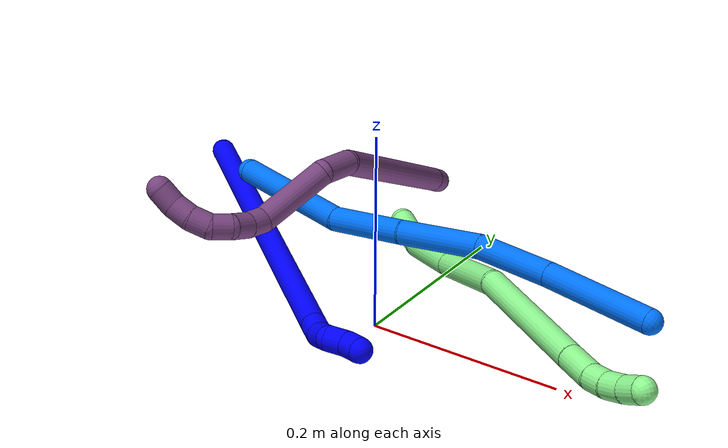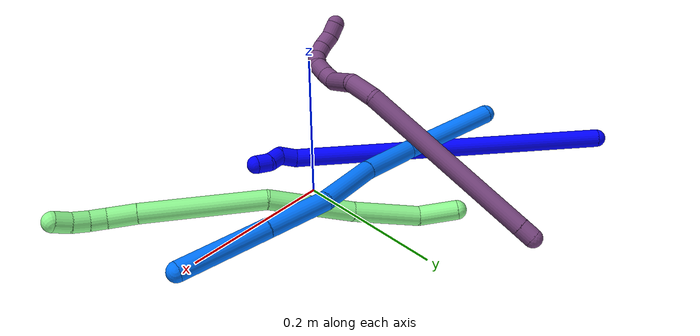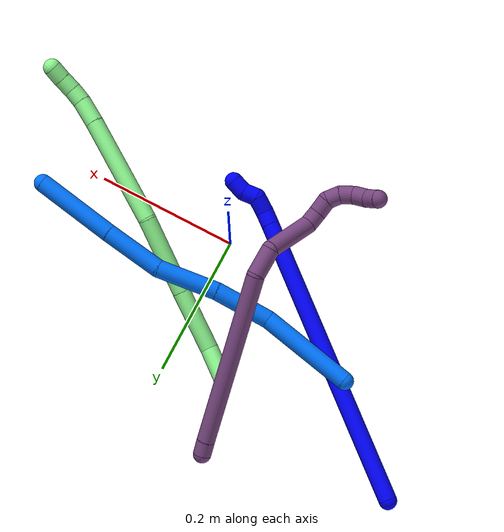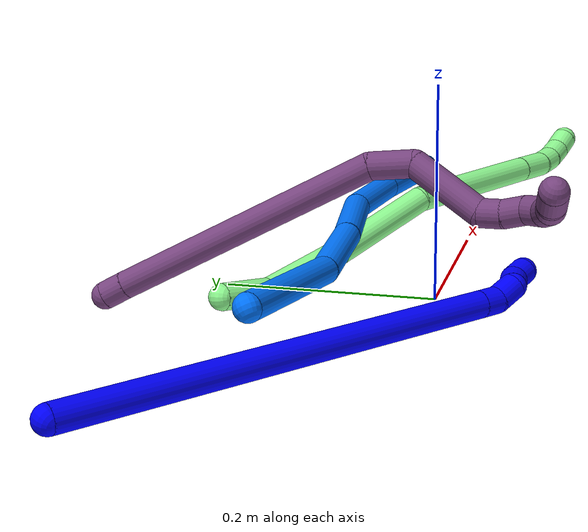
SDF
<sdf version="1.7">
 <world name="default">
  <model name="1">
   <static>0</static>
   <link name="1">
    <collision name="collision-cylinder-e_1_1_4">
     <pose>0.159517 -0.130826 -0.02363 1.74949 0.876014 1.02177</pose>
     <geometry><cylinder><radius>0.0125</radius><length>0.415306</length></cylinder></geometry>
     <surface>
      <friction><ode><mu>1.16</mu><mu2>1.16</mu2><slip1>0</slip1><slip2>0</slip2></ode></friction>
      <contact><ode><kp>1e+06</kp><kd>1</kd><max_vel>0</max_vel><min_depth>0.001</min_depth></ode></contact>
     </surface>
    </collision>
    <visual name="visual-cylinder-e_1_1_4">
     <pose>0.159517 -0.130826 -0.02363 1.74949 0.876014 1.02177</pose>
     <geometry><cylinder><radius>0.0125</radius><length>0.415306</length></cylinder></geometry>
     <material><ambient>0 0 1 1</ambient></material>
    </visual>
    <collision name="collision-cylinder-e_2_4_5">
     <pose>0.326929 -0.268099 -0.048311 1.73226 0.879559 1.01082</pose>
     <geometry><cylinder><radius>0.0125</radius><length>0.020492</length></cylinder></geometry>
     <surface>
      <friction><ode><mu>1.16</mu><mu2>1.16</mu2><slip1>0</slip1><slip2>0</slip2></ode></friction>
      <contact><ode><kp>1e+06</kp><kd>1</kd><max_vel>0</max_vel><min_depth>0.001</min_depth></ode></contact>
     </surface>
    </collision>
    <visual name="visual-cylinder-e_2_4_5">
     <pose>0.326929 -0.268099 -0.048311 1.73226 0.879559 1.01082</pose>
     <geometry><cylinder><radius>0.0125</radius><length>0.020492</length></cylinder></geometry>
     <material><ambient>0 0 1 1</ambient></material>
    </visual>
    <collision name="collision-cylinder-e_3_5_6">
     <pose>0.341251 -0.284482 -0.048433 1.47765 0.572252 0.523687</pose>
     <geometry><cylinder><radius>0.0125</radius><length>0.023741</length></cylinder></geometry>
     <surface>
      <friction><ode><mu>1.16</mu><mu2>1.16</mu2><slip1>0</slip1><slip2>0</slip2></ode></friction>
      <contact><ode><kp>1e+06</kp><kd>1</kd><max_vel>0</max_vel><min_depth>0.001</min_depth></ode></contact>
     </surface>
    </collision>
    <visual name="visual-cylinder-e_3_5_6">
     <pose>0.341251 -0.284482 -0.048433 1.47765 0.572252 0.523687</pose>
     <geometry><cylinder><radius>0.0125</radius><length>0.023741</length></cylinder></geometry>
     <material><ambient>0 0 1 1</ambient></material>
    </visual>
    <collision name="collision-cylinder-e_4_6_7">
     <pose>0.354846 -0.298239 -0.041424 0.561123 0.784369 0.237255</pose>
     <geometry><cylinder><radius>0.0125</radius><length>0.020291</length></cylinder></geometry>
     <surface>
      <friction><ode><mu>1.16</mu><mu2>1.16</mu2><slip1>0</slip1><slip2>0</slip2></ode></friction>
      <contact><ode><kp>1e+06</kp><kd>1</kd><max_vel>0</max_vel><min_depth>0.001</min_depth></ode></contact>
     </surface>
    </collision>
    <visual name="visual-cylinder-e_4_6_7">
     <pose>0.354846 -0.298239 -0.041424 0.561123 0.784369 0.237255</pose>
     <geometry><cylinder><radius>0.0125</radius><length>0.020291</length></cylinder></geometry>
     <material><ambient>0 0 1 1</ambient></material>
    </visual>
    <collision name="collision-cylinder-e_5_7_2">
     <pose>0.369249 -0.308569 -0.032702 1.18511 0.800223 0.554795</pose>
     <geometry><cylinder><radius>0.0125</radius><length>0.020171</length></cylinder></geometry>
     <surface>
      <friction><ode><mu>1.16</mu><mu2>1.16</mu2><slip1>0</slip1><slip2>0</slip2></ode></friction>
      <contact><ode><kp>1e+06</kp><kd>1</kd><max_vel>0</max_vel><min_depth>0.001</min_depth></ode></contact>
     </surface>
    </collision>
    <visual name="visual-cylinder-e_5_7_2">
     <pose>0.369249 -0.308569 -0.032702 1.18511 0.800223 0.554795</pose>
     <geometry><cylinder><radius>0.0125</radius><length>0.020171</length></cylinder></geometry>
     <material><ambient>0 0 1 1</ambient></material>
    </visual>
    <collision name="collision-sphere-2">
     <pose>0.376485 -0.315078 -0.030059 0 -0 0</pose>
     <geometry><sphere><radius>0.0125</radius></sphere></geometry>
     <surface>
      <friction><ode><mu>1.16</mu><mu2>1.16</mu2><slip1>0</slip1><slip2>0</slip2></ode></friction>
      <contact><ode><kp>1e+06</kp><kd>1</kd><max_vel>0</max_vel><min_depth>0.001</min_depth></ode></contact>
     </surface>
    </collision>
    <visual name="visual-sphere-2">
     <pose>0.376485 -0.315078 -0.030059 0 -0 0</pose>
     <geometry><sphere><radius>0.0125</radius></sphere></geometry>
     <material><ambient>0 0 1 1</ambient></material>
    </visual>
    <collision name="collision-sphere-7">
     <pose>0.362012 -0.30206 -0.035344 0 -0 0</pose>
     <geometry><sphere><radius>0.0125</radius></sphere></geometry>
     <surface>
      <friction><ode><mu>1.16</mu><mu2>1.16</mu2><slip1>0</slip1><slip2>0</slip2></ode></friction>
      <contact><ode><kp>1e+06</kp><kd>1</kd><max_vel>0</max_vel><min_depth>0.001</min_depth></ode></contact>
     </surface>
    </collision>
    <visual name="visual-sphere-7">
     <pose>0.362012 -0.30206 -0.035344 0 -0 0</pose>
     <geometry><sphere><radius>0.0125</radius></sphere></geometry>
     <material><ambient>0 0 1 1</ambient></material>
    </visual>
    <collision name="collision-sphere-6">
     <pose>0.347679 -0.294417 -0.047504 0 -0 0</pose>
     <geometry><sphere><radius>0.0125</radius></sphere></geometry>
     <surface>
      <friction><ode><mu>1.16</mu><mu2>1.16</mu2><slip1>0</slip1><slip2>0</slip2></ode></friction>
      <contact><ode><kp>1e+06</kp><kd>1</kd><max_vel>0</max_vel><min_depth>0.001</min_depth></ode></contact>
     </surface>
    </collision>
    <visual name="visual-sphere-6">
     <pose>0.347679 -0.294417 -0.047504 0 -0 0</pose>
     <geometry><sphere><radius>0.0125</radius></sphere></geometry>
     <material><ambient>0 0 1 1</ambient></material>
    </visual>
    <collision name="collision-sphere-5">
     <pose>0.334823 -0.274546 -0.049361 0 -0 0</pose>
     <geometry><sphere><radius>0.0125</radius></sphere></geometry>
     <surface>
      <friction><ode><mu>1.16</mu><mu2>1.16</mu2><slip1>0</slip1><slip2>0</slip2></ode></friction>
      <contact><ode><kp>1e+06</kp><kd>1</kd><max_vel>0</max_vel><min_depth>0.001</min_depth></ode></contact>
     </surface>
    </collision>
    <visual name="visual-sphere-5">
     <pose>0.334823 -0.274546 -0.049361 0 -0 0</pose>
     <geometry><sphere><radius>0.0125</radius></sphere></geometry>
     <material><ambient>0 0 1 1</ambient></material>
    </visual>
    <collision name="collision-sphere-1">
     <geometry><sphere><radius>0.0125</radius></sphere></geometry>
     <surface>
      <friction><ode><mu>1.16</mu><mu2>1.16</mu2><slip1>0</slip1><slip2>0</slip2></ode></friction>
      <contact><ode><kp>1e+06</kp><kd>1</kd><max_vel>0</max_vel><min_depth>0.001</min_depth></ode></contact>
     </surface>
    </collision>
    <visual name="visual-sphere-1">
     <geometry><sphere><radius>0.0125</radius></sphere></geometry>
     <material><ambient>0 0 1 1</ambient></material>
    </visual>
    <collision name="collision-sphere-4">
     <pose>0.319035 -0.261652 -0.047261 0 -0 0</pose>
     <geometry><sphere><radius>0.0125</radius></sphere></geometry>
     <surface>
      <friction><ode><mu>1.16</mu><mu2>1.16</mu2><slip1>0</slip1><slip2>0</slip2></ode></friction>
      <contact><ode><kp>1e+06</kp><kd>1</kd><max_vel>0</max_vel><min_depth>0.001</min_depth></ode></contact>
     </surface>
    </collision>
    <visual name="visual-sphere-4">
     <pose>0.319035 -0.261652 -0.047261 0 -0 0</pose>
     <geometry><sphere><radius>0.0125</radius></sphere></geometry>
     <material><ambient>0 0 1 1</ambient></material>
    </visual>
    <inertial>
     <pose>0.191395 -0.157712 -0.026908 0 -0 0</pose>
     <mass>0.5</mass>
     <inertia>
      <ixx>0.005304</ixx>
      <ixy>0</ixy>
      <ixz>0</ixz>
      <iyy>0.006555</iyy>
      <iyz>0</iyz>
      <izz>-0.00083</izz>
     </inertia>
    </inertial>
   </link>
   <pose>-0.358455 0.217861 0.011495 -1.28395 0.640028 -0.400552</pose>
  </model>
  <model name="13">
   <static>0</static>
   <link name="13">
    <collision name="collision-cylinder-e_1_1_4">
     <pose>0.021274 -0.009643 -0.009671 2.35765 1.00012 1.84625</pose>
     <geometry><cylinder><radius>0.0125</radius><length>0.050561</length></cylinder></geometry>
     <surface>
      <friction><ode><mu>1.16</mu><mu2>1.16</mu2><slip1>0</slip1><slip2>0</slip2></ode></friction>
      <contact><ode><kp>1e+06</kp><kd>1</kd><max_vel>0</max_vel><min_depth>0.001</min_depth></ode></contact>
     </surface>
    </collision>
    <visual name="visual-cylinder-e_1_1_4">
     <pose>0.021274 -0.009643 -0.009671 2.35765 1.00012 1.84625</pose>
     <geometry><cylinder><radius>0.0125</radius><length>0.050561</length></cylinder></geometry>
     <material><ambient>0.564706 0.984314 0.572549 1</ambient></material>
    </visual>
    <collision name="collision-cylinder-e_2_4_5">
     <pose>0.071507 -0.047953 -0.035287 2.07839 0.723199 1.14312</pose>
     <geometry><cylinder><radius>0.0125</radius><length>0.087515</length></cylinder></geometry>
     <surface>
      <friction><ode><mu>1.16</mu><mu2>1.16</mu2><slip1>0</slip1><slip2>0</slip2></ode></friction>
      <contact><ode><kp>1e+06</kp><kd>1</kd><max_vel>0</max_vel><min_depth>0.001</min_depth></ode></contact>
     </surface>
    </collision>
    <visual name="visual-cylinder-e_2_4_5">
     <pose>0.071507 -0.047953 -0.035287 2.07839 0.723199 1.14312</pose>
     <geometry><cylinder><radius>0.0125</radius><length>0.087515</length></cylinder></geometry>
     <material><ambient>0.564706 0.984314 0.572549 1</ambient></material>
    </visual>
    <collision name="collision-cylinder-e_3_5_6">
     <pose>0.133691 -0.115754 -0.071979 2.05829 0.643604 1.01197</pose>
     <geometry><cylinder><radius>0.0125</radius><length>0.110737</length></cylinder></geometry>
     <surface>
      <friction><ode><mu>1.16</mu><mu2>1.16</mu2><slip1>0</slip1><slip2>0</slip2></ode></friction>
      <contact><ode><kp>1e+06</kp><kd>1</kd><max_vel>0</max_vel><min_depth>0.001</min_depth></ode></contact>
     </surface>
    </collision>
    <visual name="visual-cylinder-e_3_5_6">
     <pose>0.133691 -0.115754 -0.071979 2.05829 0.643604 1.01197</pose>
     <geometry><cylinder><radius>0.0125</radius><length>0.110737</length></cylinder></geometry>
     <material><ambient>0.564706 0.984314 0.572549 1</ambient></material>
    </visual>
    <collision name="collision-cylinder-e_4_6_7">
     <pose>0.228113 -0.194462 -0.117179 2.12426 0.920799 1.45387</pose>
     <geometry><cylinder><radius>0.0125</radius><length>0.153743</length></cylinder></geometry>
     <surface>
      <friction><ode><mu>1.16</mu><mu2>1.16</mu2><slip1>0</slip1><slip2>0</slip2></ode></friction>
      <contact><ode><kp>1e+06</kp><kd>1</kd><max_vel>0</max_vel><min_depth>0.001</min_depth></ode></contact>
     </surface>
    </collision>
    <visual name="visual-cylinder-e_4_6_7">
     <pose>0.228113 -0.194462 -0.117179 2.12426 0.920799 1.45387</pose>
     <geometry><cylinder><radius>0.0125</radius><length>0.153743</length></cylinder></geometry>
     <material><ambient>0.564706 0.984314 0.572549 1</ambient></material>
    </visual>
    <collision name="collision-cylinder-e_5_7_8">
     <pose>0.30367 -0.242873 -0.146483 2.0729 0.958862 1.44165</pose>
     <geometry><cylinder><radius>0.0125</radius><length>0.03509</length></cylinder></geometry>
     <surface>
      <friction><ode><mu>1.16</mu><mu2>1.16</mu2><slip1>0</slip1><slip2>0</slip2></ode></friction>
      <contact><ode><kp>1e+06</kp><kd>1</kd><max_vel>0</max_vel><min_depth>0.001</min_depth></ode></contact>
     </surface>
    </collision>
    <visual name="visual-cylinder-e_5_7_8">
     <pose>0.30367 -0.242873 -0.146483 2.0729 0.958862 1.44165</pose>
     <geometry><cylinder><radius>0.0125</radius><length>0.03509</length></cylinder></geometry>
     <material><ambient>0.564706 0.984314 0.572549 1</ambient></material>
    </visual>
    <collision name="collision-cylinder-e_6_8_9">
     <pose>0.32589 -0.258178 -0.152861 1.80263 0.868675 1.06034</pose>
     <geometry><cylinder><radius>0.0125</radius><length>0.020587</length></cylinder></geometry>
     <surface>
      <friction><ode><mu>1.16</mu><mu2>1.16</mu2><slip1>0</slip1><slip2>0</slip2></ode></friction>
      <contact><ode><kp>1e+06</kp><kd>1</kd><max_vel>0</max_vel><min_depth>0.001</min_depth></ode></contact>
     </surface>
    </collision>
    <visual name="visual-cylinder-e_6_8_9">
     <pose>0.32589 -0.258178 -0.152861 1.80263 0.868675 1.06034</pose>
     <geometry><cylinder><radius>0.0125</radius><length>0.020587</length></cylinder></geometry>
     <material><ambient>0.564706 0.984314 0.572549 1</ambient></material>
    </visual>
    <collision name="collision-cylinder-e_7_9_10">
     <pose>0.340685 -0.272537 -0.155058 1.65541 0.719457 0.777069</pose>
     <geometry><cylinder><radius>0.0125</radius><length>0.021052</length></cylinder></geometry>
     <surface>
      <friction><ode><mu>1.16</mu><mu2>1.16</mu2><slip1>0</slip1><slip2>0</slip2></ode></friction>
      <contact><ode><kp>1e+06</kp><kd>1</kd><max_vel>0</max_vel><min_depth>0.001</min_depth></ode></contact>
     </surface>
    </collision>
    <visual name="visual-cylinder-e_7_9_10">
     <pose>0.340685 -0.272537 -0.155058 1.65541 0.719457 0.777069</pose>
     <geometry><cylinder><radius>0.0125</radius><length>0.021052</length></cylinder></geometry>
     <material><ambient>0.564706 0.984314 0.572549 1</ambient></material>
    </visual>
    <collision name="collision-cylinder-e_8_10_2">
     <pose>0.353159 -0.289105 -0.156858 1.70037 0.564036 0.637394</pose>
     <geometry><cylinder><radius>0.0125</radius><length>0.020716</length></cylinder></geometry>
     <surface>
      <friction><ode><mu>1.16</mu><mu2>1.16</mu2><slip1>0</slip1><slip2>0</slip2></ode></friction>
      <contact><ode><kp>1e+06</kp><kd>1</kd><max_vel>0</max_vel><min_depth>0.001</min_depth></ode></contact>
     </surface>
    </collision>
    <visual name="visual-cylinder-e_8_10_2">
     <pose>0.353159 -0.289105 -0.156858 1.70037 0.564036 0.637394</pose>
     <geometry><cylinder><radius>0.0125</radius><length>0.020716</length></cylinder></geometry>
     <material><ambient>0.564706 0.984314 0.572549 1</ambient></material>
    </visual>
    <collision name="collision-sphere-2">
     <pose>0.358696 -0.297785 -0.157989 0 -0 0</pose>
     <geometry><sphere><radius>0.0125</radius></sphere></geometry>
     <surface>
      <friction><ode><mu>1.16</mu><mu2>1.16</mu2><slip1>0</slip1><slip2>0</slip2></ode></friction>
      <contact><ode><kp>1e+06</kp><kd>1</kd><max_vel>0</max_vel><min_depth>0.001</min_depth></ode></contact>
     </surface>
    </collision>
    <visual name="visual-sphere-2">
     <pose>0.358696 -0.297785 -0.157989 0 -0 0</pose>
     <geometry><sphere><radius>0.0125</radius></sphere></geometry>
     <material><ambient>0.564706 0.984314 0.572549 1</ambient></material>
    </visual>
    <collision name="collision-sphere-10">
     <pose>0.347621 -0.280425 -0.155727 0 -0 0</pose>
     <geometry><sphere><radius>0.0125</radius></sphere></geometry>
     <surface>
      <friction><ode><mu>1.16</mu><mu2>1.16</mu2><slip1>0</slip1><slip2>0</slip2></ode></friction>
      <contact><ode><kp>1e+06</kp><kd>1</kd><max_vel>0</max_vel><min_depth>0.001</min_depth></ode></contact>
     </surface>
    </collision>
    <visual name="visual-sphere-10">
     <pose>0.347621 -0.280425 -0.155727 0 -0 0</pose>
     <geometry><sphere><radius>0.0125</radius></sphere></geometry>
     <material><ambient>0.564706 0.984314 0.572549 1</ambient></material>
    </visual>
    <collision name="collision-sphere-9">
     <pose>0.333749 -0.264648 -0.154389 0 -0 0</pose>
     <geometry><sphere><radius>0.0125</radius></sphere></geometry>
     <surface>
      <friction><ode><mu>1.16</mu><mu2>1.16</mu2><slip1>0</slip1><slip2>0</slip2></ode></friction>
      <contact><ode><kp>1e+06</kp><kd>1</kd><max_vel>0</max_vel><min_depth>0.001</min_depth></ode></contact>
     </surface>
    </collision>
    <visual name="visual-sphere-9">
     <pose>0.333749 -0.264648 -0.154389 0 -0 0</pose>
     <geometry><sphere><radius>0.0125</radius></sphere></geometry>
     <material><ambient>0.564706 0.984314 0.572549 1</ambient></material>
    </visual>
    <collision name="collision-sphere-4">
     <pose>0.042549 -0.019285 -0.019341 0 -0 0</pose>
     <geometry><sphere><radius>0.0125</radius></sphere></geometry>
     <surface>
      <friction><ode><mu>1.16</mu><mu2>1.16</mu2><slip1>0</slip1><slip2>0</slip2></ode></friction>
      <contact><ode><kp>1e+06</kp><kd>1</kd><max_vel>0</max_vel><min_depth>0.001</min_depth></ode></contact>
     </surface>
    </collision>
    <visual name="visual-sphere-4">
     <pose>0.042549 -0.019285 -0.019341 0 -0 0</pose>
     <geometry><sphere><radius>0.0125</radius></sphere></geometry>
     <material><ambient>0.564706 0.984314 0.572549 1</ambient></material>
    </visual>
    <collision name="collision-sphere-1">
     <geometry><sphere><radius>0.0125</radius></sphere></geometry>
     <surface>
      <friction><ode><mu>1.16</mu><mu2>1.16</mu2><slip1>0</slip1><slip2>0</slip2></ode></friction>
      <contact><ode><kp>1e+06</kp><kd>1</kd><max_vel>0</max_vel><min_depth>0.001</min_depth></ode></contact>
     </surface>
    </collision>
    <visual name="visual-sphere-1">
     <geometry><sphere><radius>0.0125</radius></sphere></geometry>
     <material><ambient>0.564706 0.984314 0.572549 1</ambient></material>
    </visual>
    <collision name="collision-sphere-8">
     <pose>0.318031 -0.251707 -0.151334 0 -0 0</pose>
     <geometry><sphere><radius>0.0125</radius></sphere></geometry>
     <surface>
      <friction><ode><mu>1.16</mu><mu2>1.16</mu2><slip1>0</slip1><slip2>0</slip2></ode></friction>
      <contact><ode><kp>1e+06</kp><kd>1</kd><max_vel>0</max_vel><min_depth>0.001</min_depth></ode></contact>
     </surface>
    </collision>
    <visual name="visual-sphere-8">
     <pose>0.318031 -0.251707 -0.151334 0 -0 0</pose>
     <geometry><sphere><radius>0.0125</radius></sphere></geometry>
     <material><ambient>0.564706 0.984314 0.572549 1</ambient></material>
    </visual>
    <collision name="collision-sphere-5">
     <pose>0.100465 -0.076622 -0.051233 0 -0 0</pose>
     <geometry><sphere><radius>0.0125</radius></sphere></geometry>
     <surface>
      <friction><ode><mu>1.16</mu><mu2>1.16</mu2><slip1>0</slip1><slip2>0</slip2></ode></friction>
      <contact><ode><kp>1e+06</kp><kd>1</kd><max_vel>0</max_vel><min_depth>0.001</min_depth></ode></contact>
     </surface>
    </collision>
    <visual name="visual-sphere-5">
     <pose>0.100465 -0.076622 -0.051233 0 -0 0</pose>
     <geometry><sphere><radius>0.0125</radius></sphere></geometry>
     <material><ambient>0.564706 0.984314 0.572549 1</ambient></material>
    </visual>
    <collision name="collision-sphere-6">
     <pose>0.166916 -0.154886 -0.092726 0 -0 0</pose>
     <geometry><sphere><radius>0.0125</radius></sphere></geometry>
     <surface>
      <friction><ode><mu>1.16</mu><mu2>1.16</mu2><slip1>0</slip1><slip2>0</slip2></ode></friction>
      <contact><ode><kp>1e+06</kp><kd>1</kd><max_vel>0</max_vel><min_depth>0.001</min_depth></ode></contact>
     </surface>
    </collision>
    <visual name="visual-sphere-6">
     <pose>0.166916 -0.154886 -0.092726 0 -0 0</pose>
     <geometry><sphere><radius>0.0125</radius></sphere></geometry>
     <material><ambient>0.564706 0.984314 0.572549 1</ambient></material>
    </visual>
    <collision name="collision-sphere-7">
     <pose>0.289309 -0.234038 -0.141633 0 -0 0</pose>
     <geometry><sphere><radius>0.0125</radius></sphere></geometry>
     <surface>
      <friction><ode><mu>1.16</mu><mu2>1.16</mu2><slip1>0</slip1><slip2>0</slip2></ode></friction>
      <contact><ode><kp>1e+06</kp><kd>1</kd><max_vel>0</max_vel><min_depth>0.001</min_depth></ode></contact>
     </surface>
    </collision>
    <visual name="visual-sphere-7">
     <pose>0.289309 -0.234038 -0.141633 0 -0 0</pose>
     <geometry><sphere><radius>0.0125</radius></sphere></geometry>
     <material><ambient>0.564706 0.984314 0.572549 1</ambient></material>
    </visual>
    <inertial>
     <pose>0.178123 -0.145927 -0.088728 0 -0 0</pose>
     <mass>0.5</mass>
     <inertia>
      <ixx>0.000437</ixx>
      <ixy>0</ixy>
      <ixz>0</ixz>
      <iyy>0.000541</iyy>
      <iyz>0</iyz>
      <izz>-9.4e-05</izz>
     </inertia>
    </inertial>
   </link>
   <pose>-0.084472 0.177861 0.016692 -1.71853 0.57366 -0.345301</pose>
  </model>
  <model name="14">
   <static>0</static>
   <link name="14">
    <collision name="collision-cylinder-e_1_1_4">
     <pose>0.063895 -0.013832 0.015449 0.730204 1.25698 0.541959</pose>
     <geometry><cylinder><radius>0.0125</radius><length>0.134351</length></cylinder></geometry>
     <surface>
      <friction><ode><mu>1.16</mu><mu2>1.16</mu2><slip1>0</slip1><slip2>0</slip2></ode></friction>
      <contact><ode><kp>1e+06</kp><kd>1</kd><max_vel>0</max_vel><min_depth>0.001</min_depth></ode></contact>
     </surface>
    </collision>
    <visual name="visual-cylinder-e_1_1_4">
     <pose>0.063895 -0.013832 0.015449 0.730204 1.25698 0.541959</pose>
     <geometry><cylinder><radius>0.0125</radius><length>0.134351</length></cylinder></geometry>
     <material><ambient>0 0.462745 1 1</ambient></material>
    </visual>
    <collision name="collision-cylinder-e_2_4_5">
     <pose>0.163057 -0.03238 0.049587 0.247231 1.07062 0.147112</pose>
     <geometry><cylinder><radius>0.0125</radius><length>0.080382</length></cylinder></geometry>
     <surface>
      <friction><ode><mu>1.16</mu><mu2>1.16</mu2><slip1>0</slip1><slip2>0</slip2></ode></friction>
      <contact><ode><kp>1e+06</kp><kd>1</kd><max_vel>0</max_vel><min_depth>0.001</min_depth></ode></contact>
     </surface>
    </collision>
    <visual name="visual-cylinder-e_2_4_5">
     <pose>0.163057 -0.03238 0.049587 0.247231 1.07062 0.147112</pose>
     <geometry><cylinder><radius>0.0125</radius><length>0.080382</length></cylinder></geometry>
     <material><ambient>0 0.462745 1 1</ambient></material>
    </visual>
    <collision name="collision-cylinder-e_3_5_6">
     <pose>0.235699 -0.036305 0.088977 -0.038236 1.06467 -0.022525</pose>
     <geometry><cylinder><radius>0.0125</radius><length>0.085464</length></cylinder></geometry>
     <surface>
      <friction><ode><mu>1.16</mu><mu2>1.16</mu2><slip1>0</slip1><slip2>0</slip2></ode></friction>
      <contact><ode><kp>1e+06</kp><kd>1</kd><max_vel>0</max_vel><min_depth>0.001</min_depth></ode></contact>
     </surface>
    </collision>
    <visual name="visual-cylinder-e_3_5_6">
     <pose>0.235699 -0.036305 0.088977 -0.038236 1.06467 -0.022525</pose>
     <geometry><cylinder><radius>0.0125</radius><length>0.085464</length></cylinder></geometry>
     <material><ambient>0 0.462745 1 1</ambient></material>
    </visual>
    <collision name="collision-cylinder-e_4_6_7">
     <pose>0.311962 -0.043068 0.122754 0.523926 1.20039 0.362983</pose>
     <geometry><cylinder><radius>0.0125</radius><length>0.083435</length></cylinder></geometry>
     <surface>
      <friction><ode><mu>1.16</mu><mu2>1.16</mu2><slip1>0</slip1><slip2>0</slip2></ode></friction>
      <contact><ode><kp>1e+06</kp><kd>1</kd><max_vel>0</max_vel><min_depth>0.001</min_depth></ode></contact>
     </surface>
    </collision>
    <visual name="visual-cylinder-e_4_6_7">
     <pose>0.311962 -0.043068 0.122754 0.523926 1.20039 0.362983</pose>
     <geometry><cylinder><radius>0.0125</radius><length>0.083435</length></cylinder></geometry>
     <material><ambient>0 0.462745 1 1</ambient></material>
    </visual>
    <collision name="collision-cylinder-e_5_7_2">
     <pose>0.40568 -0.061771 0.151795 0.609565 1.22955 0.437128</pose>
     <geometry><cylinder><radius>0.0125</radius><length>0.116368</length></cylinder></geometry>
     <surface>
      <friction><ode><mu>1.16</mu><mu2>1.16</mu2><slip1>0</slip1><slip2>0</slip2></ode></friction>
      <contact><ode><kp>1e+06</kp><kd>1</kd><max_vel>0</max_vel><min_depth>0.001</min_depth></ode></contact>
     </surface>
    </collision>
    <visual name="visual-cylinder-e_5_7_2">
     <pose>0.40568 -0.061771 0.151795 0.609565 1.22955 0.437128</pose>
     <geometry><cylinder><radius>0.0125</radius><length>0.116368</length></cylinder></geometry>
     <material><ambient>0 0.462745 1 1</ambient></material>
    </visual>
    <collision name="collision-sphere-2">
     <pose>0.460509 -0.072919 0.16776 0 -0 0</pose>
     <geometry><sphere><radius>0.0125</radius></sphere></geometry>
     <surface>
      <friction><ode><mu>1.16</mu><mu2>1.16</mu2><slip1>0</slip1><slip2>0</slip2></ode></friction>
      <contact><ode><kp>1e+06</kp><kd>1</kd><max_vel>0</max_vel><min_depth>0.001</min_depth></ode></contact>
     </surface>
    </collision>
    <visual name="visual-sphere-2">
     <pose>0.460509 -0.072919 0.16776 0 -0 0</pose>
     <geometry><sphere><radius>0.0125</radius></sphere></geometry>
     <material><ambient>0 0.462745 1 1</ambient></material>
    </visual>
    <collision name="collision-sphere-7">
     <pose>0.350851 -0.050623 0.13583 0 -0 0</pose>
     <geometry><sphere><radius>0.0125</radius></sphere></geometry>
     <surface>
      <friction><ode><mu>1.16</mu><mu2>1.16</mu2><slip1>0</slip1><slip2>0</slip2></ode></friction>
      <contact><ode><kp>1e+06</kp><kd>1</kd><max_vel>0</max_vel><min_depth>0.001</min_depth></ode></contact>
     </surface>
    </collision>
    <visual name="visual-sphere-7">
     <pose>0.350851 -0.050623 0.13583 0 -0 0</pose>
     <geometry><sphere><radius>0.0125</radius></sphere></geometry>
     <material><ambient>0 0.462745 1 1</ambient></material>
    </visual>
    <collision name="collision-sphere-6">
     <pose>0.273074 -0.035513 0.109678 0 -0 0</pose>
     <geometry><sphere><radius>0.0125</radius></sphere></geometry>
     <surface>
      <friction><ode><mu>1.16</mu><mu2>1.16</mu2><slip1>0</slip1><slip2>0</slip2></ode></friction>
      <contact><ode><kp>1e+06</kp><kd>1</kd><max_vel>0</max_vel><min_depth>0.001</min_depth></ode></contact>
     </surface>
    </collision>
    <visual name="visual-sphere-6">
     <pose>0.273074 -0.035513 0.109678 0 -0 0</pose>
     <geometry><sphere><radius>0.0125</radius></sphere></geometry>
     <material><ambient>0 0.462745 1 1</ambient></material>
    </visual>
    <collision name="collision-sphere-5">
     <pose>0.198324 -0.037097 0.068276 0 -0 0</pose>
     <geometry><sphere><radius>0.0125</radius></sphere></geometry>
     <surface>
      <friction><ode><mu>1.16</mu><mu2>1.16</mu2><slip1>0</slip1><slip2>0</slip2></ode></friction>
      <contact><ode><kp>1e+06</kp><kd>1</kd><max_vel>0</max_vel><min_depth>0.001</min_depth></ode></contact>
     </surface>
    </collision>
    <visual name="visual-sphere-5">
     <pose>0.198324 -0.037097 0.068276 0 -0 0</pose>
     <geometry><sphere><radius>0.0125</radius></sphere></geometry>
     <material><ambient>0 0.462745 1 1</ambient></material>
    </visual>
    <collision name="collision-sphere-1">
     <geometry><sphere><radius>0.0125</radius></sphere></geometry>
     <surface>
      <friction><ode><mu>1.16</mu><mu2>1.16</mu2><slip1>0</slip1><slip2>0</slip2></ode></friction>
      <contact><ode><kp>1e+06</kp><kd>1</kd><max_vel>0</max_vel><min_depth>0.001</min_depth></ode></contact>
     </surface>
    </collision>
    <visual name="visual-sphere-1">
     <geometry><sphere><radius>0.0125</radius></sphere></geometry>
     <material><ambient>0 0.462745 1 1</ambient></material>
    </visual>
    <collision name="collision-sphere-4">
     <pose>0.127789 -0.027663 0.030899 0 -0 0</pose>
     <geometry><sphere><radius>0.0125</radius></sphere></geometry>
     <surface>
      <friction><ode><mu>1.16</mu><mu2>1.16</mu2><slip1>0</slip1><slip2>0</slip2></ode></friction>
      <contact><ode><kp>1e+06</kp><kd>1</kd><max_vel>0</max_vel><min_depth>0.001</min_depth></ode></contact>
     </surface>
    </collision>
    <visual name="visual-sphere-4">
     <pose>0.127789 -0.027663 0.030899 0 -0 0</pose>
     <geometry><sphere><radius>0.0125</radius></sphere></geometry>
     <material><ambient>0 0.462745 1 1</ambient></material>
    </visual>
    <inertial>
     <pose>0.230143 -0.036691 0.083144 0 -0 0</pose>
     <mass>0.5</mass>
     <inertia>
      <ixx>0.00026</ixx>
      <ixy>0</ixy>
      <ixz>0</ixz>
      <iyy>0.00054</iyy>
      <iyz>0</iyz>
      <izz>-0.000367</izz>
     </inertia>
    </inertial>
   </link>
   <pose>-0.232597 0.106896 0.061903 -0.566588 0.369089 -0.159083</pose>
  </model>
  <model name="20">
   <static>0</static>
   <link name="20">
    <collision name="collision-cylinder-e_1_1_4">
     <pose>0.006948 -0.005813 0.004928 0.867593 0.739256 0.355157</pose>
     <geometry><cylinder><radius>0.0125</radius><length>0.020626</length></cylinder></geometry>
     <surface>
      <friction><ode><mu>1.16</mu><mu2>1.16</mu2><slip1>0</slip1><slip2>0</slip2></ode></friction>
      <contact><ode><kp>1e+06</kp><kd>1</kd><max_vel>0</max_vel><min_depth>0.001</min_depth></ode></contact>
     </surface>
    </collision>
    <visual name="visual-cylinder-e_1_1_4">
     <pose>0.006948 -0.005813 0.004928 0.867593 0.739256 0.355157</pose>
     <geometry><cylinder><radius>0.0125</radius><length>0.020626</length></cylinder></geometry>
     <material><ambient>0.478431 0.278431 0.509804 1</ambient></material>
    </visual>
    <collision name="collision-cylinder-e_2_4_5">
     <pose>0.094029 -0.083478 0.067904 0.891271 0.714579 0.35294</pose>
     <geometry><cylinder><radius>0.0125</radius><length>0.244567</length></cylinder></geometry>
     <surface>
      <friction><ode><mu>1.16</mu><mu2>1.16</mu2><slip1>0</slip1><slip2>0</slip2></ode></friction>
      <contact><ode><kp>1e+06</kp><kd>1</kd><max_vel>0</max_vel><min_depth>0.001</min_depth></ode></contact>
     </surface>
    </collision>
    <visual name="visual-cylinder-e_2_4_5">
     <pose>0.094029 -0.083478 0.067904 0.891271 0.714579 0.35294</pose>
     <geometry><cylinder><radius>0.0125</radius><length>0.244567</length></cylinder></geometry>
     <material><ambient>0.478431 0.278431 0.509804 1</ambient></material>
    </visual>
    <collision name="collision-cylinder-e_3_5_6">
     <pose>0.182237 -0.172605 0.132079 1.22988 0.41495 0.295196</pose>
     <geometry><cylinder><radius>0.0125</radius><length>0.040061</length></cylinder></geometry>
     <surface>
      <friction><ode><mu>1.16</mu><mu2>1.16</mu2><slip1>0</slip1><slip2>0</slip2></ode></friction>
      <contact><ode><kp>1e+06</kp><kd>1</kd><max_vel>0</max_vel><min_depth>0.001</min_depth></ode></contact>
     </surface>
    </collision>
    <visual name="visual-cylinder-e_3_5_6">
     <pose>0.182237 -0.172605 0.132079 1.22988 0.41495 0.295196</pose>
     <geometry><cylinder><radius>0.0125</radius><length>0.040061</length></cylinder></geometry>
     <material><ambient>0.478431 0.278431 0.509804 1</ambient></material>
    </visual>
    <collision name="collision-cylinder-e_4_6_7">
     <pose>0.184628 -0.226052 0.136919 1.60643 -0.155759 -0.161386</pose>
     <geometry><cylinder><radius>0.0125</radius><length>0.073276</length></cylinder></geometry>
     <surface>
      <friction><ode><mu>1.16</mu><mu2>1.16</mu2><slip1>0</slip1><slip2>0</slip2></ode></friction>
      <contact><ode><kp>1e+06</kp><kd>1</kd><max_vel>0</max_vel><min_depth>0.001</min_depth></ode></contact>
     </surface>
    </collision>
    <visual name="visual-cylinder-e_4_6_7">
     <pose>0.184628 -0.226052 0.136919 1.60643 -0.155759 -0.161386</pose>
     <geometry><cylinder><radius>0.0125</radius><length>0.073276</length></cylinder></geometry>
     <material><ambient>0.478431 0.278431 0.509804 1</ambient></material>
    </visual>
    <collision name="collision-cylinder-e_5_7_8">
     <pose>0.181485 -0.271478 0.139091 1.21283 0.251614 0.174997</pose>
     <geometry><cylinder><radius>0.0125</radius><length>0.020405</length></cylinder></geometry>
     <surface>
      <friction><ode><mu>1.16</mu><mu2>1.16</mu2><slip1>0</slip1><slip2>0</slip2></ode></friction>
      <contact><ode><kp>1e+06</kp><kd>1</kd><max_vel>0</max_vel><min_depth>0.001</min_depth></ode></contact>
     </surface>
    </collision>
    <visual name="visual-cylinder-e_5_7_8">
     <pose>0.181485 -0.271478 0.139091 1.21283 0.251614 0.174997</pose>
     <geometry><cylinder><radius>0.0125</radius><length>0.020405</length></cylinder></geometry>
     <material><ambient>0.478431 0.278431 0.509804 1</ambient></material>
    </visual>
    <collision name="collision-cylinder-e_6_8_9">
     <pose>0.187624 -0.289128 0.147789 1.01318 0.348905 0.194973</pose>
     <geometry><cylinder><radius>0.0125</radius><length>0.021057</length></cylinder></geometry>
     <surface>
      <friction><ode><mu>1.16</mu><mu2>1.16</mu2><slip1>0</slip1><slip2>0</slip2></ode></friction>
      <contact><ode><kp>1e+06</kp><kd>1</kd><max_vel>0</max_vel><min_depth>0.001</min_depth></ode></contact>
     </surface>
    </collision>
    <visual name="visual-cylinder-e_6_8_9">
     <pose>0.187624 -0.289128 0.147789 1.01318 0.348905 0.194973</pose>
     <geometry><cylinder><radius>0.0125</radius><length>0.021057</length></cylinder></geometry>
     <material><ambient>0.478431 0.278431 0.509804 1</ambient></material>
    </visual>
    <collision name="collision-cylinder-e_7_9_10">
     <pose>0.189377 -0.305394 0.158917 0.928139 -0.185591 -0.093094</pose>
     <geometry><cylinder><radius>0.0125</radius><length>0.020008</length></cylinder></geometry>
     <surface>
      <friction><ode><mu>1.16</mu><mu2>1.16</mu2><slip1>0</slip1><slip2>0</slip2></ode></friction>
      <contact><ode><kp>1e+06</kp><kd>1</kd><max_vel>0</max_vel><min_depth>0.001</min_depth></ode></contact>
     </surface>
    </collision>
    <visual name="visual-cylinder-e_7_9_10">
     <pose>0.189377 -0.305394 0.158917 0.928139 -0.185591 -0.093094</pose>
     <geometry><cylinder><radius>0.0125</radius><length>0.020008</length></cylinder></geometry>
     <material><ambient>0.478431 0.278431 0.509804 1</ambient></material>
    </visual>
    <collision name="collision-cylinder-e_8_10_11">
     <pose>0.182969 -0.317137 0.172822 0.450227 -0.473697 -0.110437</pose>
     <geometry><cylinder><radius>0.0125</radius><length>0.02</length></cylinder></geometry>
     <surface>
      <friction><ode><mu>1.16</mu><mu2>1.16</mu2><slip1>0</slip1><slip2>0</slip2></ode></friction>
      <contact><ode><kp>1e+06</kp><kd>1</kd><max_vel>0</max_vel><min_depth>0.001</min_depth></ode></contact>
     </surface>
    </collision>
    <visual name="visual-cylinder-e_8_10_11">
     <pose>0.182969 -0.317137 0.172822 0.450227 -0.473697 -0.110437</pose>
     <geometry><cylinder><radius>0.0125</radius><length>0.02</length></cylinder></geometry>
     <material><ambient>0.478431 0.278431 0.509804 1</ambient></material>
    </visual>
    <collision name="collision-cylinder-e_9_11_12">
     <pose>0.173335 -0.322516 0.18932 0.175732 -0.531959 -0.04799</pose>
     <geometry><cylinder><radius>0.0125</radius><length>0.02</length></cylinder></geometry>
     <surface>
      <friction><ode><mu>1.16</mu><mu2>1.16</mu2><slip1>0</slip1><slip2>0</slip2></ode></friction>
      <contact><ode><kp>1e+06</kp><kd>1</kd><max_vel>0</max_vel><min_depth>0.001</min_depth></ode></contact>
     </surface>
    </collision>
    <visual name="visual-cylinder-e_9_11_12">
     <pose>0.173335 -0.322516 0.18932 0.175732 -0.531959 -0.04799</pose>
     <geometry><cylinder><radius>0.0125</radius><length>0.02</length></cylinder></geometry>
     <material><ambient>0.478431 0.278431 0.509804 1</ambient></material>
    </visual>
    <collision name="collision-cylinder-e_10_12_2">
     <pose>0.165904 -0.324379 0.207517 0.036594 -0.238141 -0.004379</pose>
     <geometry><cylinder><radius>0.0125</radius><length>0.02</length></cylinder></geometry>
     <surface>
      <friction><ode><mu>1.16</mu><mu2>1.16</mu2><slip1>0</slip1><slip2>0</slip2></ode></friction>
      <contact><ode><kp>1e+06</kp><kd>1</kd><max_vel>0</max_vel><min_depth>0.001</min_depth></ode></contact>
     </surface>
    </collision>
    <visual name="visual-cylinder-e_10_12_2">
     <pose>0.165904 -0.324379 0.207517 0.036594 -0.238141 -0.004379</pose>
     <geometry><cylinder><radius>0.0125</radius><length>0.02</length></cylinder></geometry>
     <material><ambient>0.478431 0.278431 0.509804 1</ambient></material>
    </visual>
    <collision name="collision-sphere-2">
     <pose>0.163545 -0.324734 0.217228 0 -0 0</pose>
     <geometry><sphere><radius>0.0125</radius></sphere></geometry>
     <surface>
      <friction><ode><mu>1.16</mu><mu2>1.16</mu2><slip1>0</slip1><slip2>0</slip2></ode></friction>
      <contact><ode><kp>1e+06</kp><kd>1</kd><max_vel>0</max_vel><min_depth>0.001</min_depth></ode></contact>
     </surface>
    </collision>
    <visual name="visual-sphere-2">
     <pose>0.163545 -0.324734 0.217228 0 -0 0</pose>
     <geometry><sphere><radius>0.0125</radius></sphere></geometry>
     <material><ambient>0.478431 0.278431 0.509804 1</ambient></material>
    </visual>
    <collision name="collision-sphere-12">
     <pose>0.168263 -0.324023 0.197805 0 -0 0</pose>
     <geometry><sphere><radius>0.0125</radius></sphere></geometry>
     <surface>
      <friction><ode><mu>1.16</mu><mu2>1.16</mu2><slip1>0</slip1><slip2>0</slip2></ode></friction>
      <contact><ode><kp>1e+06</kp><kd>1</kd><max_vel>0</max_vel><min_depth>0.001</min_depth></ode></contact>
     </surface>
    </collision>
    <visual name="visual-sphere-12">
     <pose>0.168263 -0.324023 0.197805 0 -0 0</pose>
     <geometry><sphere><radius>0.0125</radius></sphere></geometry>
     <material><ambient>0.478431 0.278431 0.509804 1</ambient></material>
    </visual>
    <collision name="collision-sphere-11">
     <pose>0.178407 -0.32101 0.180834 0 -0 0</pose>
     <geometry><sphere><radius>0.0125</radius></sphere></geometry>
     <surface>
      <friction><ode><mu>1.16</mu><mu2>1.16</mu2><slip1>0</slip1><slip2>0</slip2></ode></friction>
      <contact><ode><kp>1e+06</kp><kd>1</kd><max_vel>0</max_vel><min_depth>0.001</min_depth></ode></contact>
     </surface>
    </collision>
    <visual name="visual-sphere-11">
     <pose>0.178407 -0.32101 0.180834 0 -0 0</pose>
     <geometry><sphere><radius>0.0125</radius></sphere></geometry>
     <material><ambient>0.478431 0.278431 0.509804 1</ambient></material>
    </visual>
    <collision name="collision-sphere-10">
     <pose>0.187531 -0.313264 0.16481 0 -0 0</pose>
     <geometry><sphere><radius>0.0125</radius></sphere></geometry>
     <surface>
      <friction><ode><mu>1.16</mu><mu2>1.16</mu2><slip1>0</slip1><slip2>0</slip2></ode></friction>
      <contact><ode><kp>1e+06</kp><kd>1</kd><max_vel>0</max_vel><min_depth>0.001</min_depth></ode></contact>
     </surface>
    </collision>
    <visual name="visual-sphere-10">
     <pose>0.187531 -0.313264 0.16481 0 -0 0</pose>
     <geometry><sphere><radius>0.0125</radius></sphere></geometry>
     <material><ambient>0.478431 0.278431 0.509804 1</ambient></material>
    </visual>
    <collision name="collision-sphere-9">
     <pose>0.191223 -0.297523 0.153024 0 -0 0</pose>
     <geometry><sphere><radius>0.0125</radius></sphere></geometry>
     <surface>
      <friction><ode><mu>1.16</mu><mu2>1.16</mu2><slip1>0</slip1><slip2>0</slip2></ode></friction>
      <contact><ode><kp>1e+06</kp><kd>1</kd><max_vel>0</max_vel><min_depth>0.001</min_depth></ode></contact>
     </surface>
    </collision>
    <visual name="visual-sphere-9">
     <pose>0.191223 -0.297523 0.153024 0 -0 0</pose>
     <geometry><sphere><radius>0.0125</radius></sphere></geometry>
     <material><ambient>0.478431 0.278431 0.509804 1</ambient></material>
    </visual>
    <collision name="collision-sphere-4">
     <pose>0.013897 -0.011626 0.009857 0 -0 0</pose>
     <geometry><sphere><radius>0.0125</radius></sphere></geometry>
     <surface>
      <friction><ode><mu>1.16</mu><mu2>1.16</mu2><slip1>0</slip1><slip2>0</slip2></ode></friction>
      <contact><ode><kp>1e+06</kp><kd>1</kd><max_vel>0</max_vel><min_depth>0.001</min_depth></ode></contact>
     </surface>
    </collision>
    <visual name="visual-sphere-4">
     <pose>0.013897 -0.011626 0.009857 0 -0 0</pose>
     <geometry><sphere><radius>0.0125</radius></sphere></geometry>
     <material><ambient>0.478431 0.278431 0.509804 1</ambient></material>
    </visual>
    <collision name="collision-sphere-1">
     <geometry><sphere><radius>0.0125</radius></sphere></geometry>
     <surface>
      <friction><ode><mu>1.16</mu><mu2>1.16</mu2><slip1>0</slip1><slip2>0</slip2></ode></friction>
      <contact><ode><kp>1e+06</kp><kd>1</kd><max_vel>0</max_vel><min_depth>0.001</min_depth></ode></contact>
     </surface>
    </collision>
    <visual name="visual-sphere-1">
     <geometry><sphere><radius>0.0125</radius></sphere></geometry>
     <material><ambient>0.478431 0.278431 0.509804 1</ambient></material>
    </visual>
    <collision name="collision-sphere-8">
     <pose>0.184025 -0.280733 0.142553 0 -0 0</pose>
     <geometry><sphere><radius>0.0125</radius></sphere></geometry>
     <surface>
      <friction><ode><mu>1.16</mu><mu2>1.16</mu2><slip1>0</slip1><slip2>0</slip2></ode></friction>
      <contact><ode><kp>1e+06</kp><kd>1</kd><max_vel>0</max_vel><min_depth>0.001</min_depth></ode></contact>
     </surface>
    </collision>
    <visual name="visual-sphere-8">
     <pose>0.184025 -0.280733 0.142553 0 -0 0</pose>
     <geometry><sphere><radius>0.0125</radius></sphere></geometry>
     <material><ambient>0.478431 0.278431 0.509804 1</ambient></material>
    </visual>
    <collision name="collision-sphere-5">
     <pose>0.174161 -0.155329 0.12595 0 -0 0</pose>
     <geometry><sphere><radius>0.0125</radius></sphere></geometry>
     <surface>
      <friction><ode><mu>1.16</mu><mu2>1.16</mu2><slip1>0</slip1><slip2>0</slip2></ode></friction>
      <contact><ode><kp>1e+06</kp><kd>1</kd><max_vel>0</max_vel><min_depth>0.001</min_depth></ode></contact>
     </surface>
    </collision>
    <visual name="visual-sphere-5">
     <pose>0.174161 -0.155329 0.12595 0 -0 0</pose>
     <geometry><sphere><radius>0.0125</radius></sphere></geometry>
     <material><ambient>0.478431 0.278431 0.509804 1</ambient></material>
    </visual>
    <collision name="collision-sphere-6">
     <pose>0.190312 -0.18988 0.138208 0 -0 0</pose>
     <geometry><sphere><radius>0.0125</radius></sphere></geometry>
     <surface>
      <friction><ode><mu>1.16</mu><mu2>1.16</mu2><slip1>0</slip1><slip2>0</slip2></ode></friction>
      <contact><ode><kp>1e+06</kp><kd>1</kd><max_vel>0</max_vel><min_depth>0.001</min_depth></ode></contact>
     </surface>
    </collision>
    <visual name="visual-sphere-6">
     <pose>0.190312 -0.18988 0.138208 0 -0 0</pose>
     <geometry><sphere><radius>0.0125</radius></sphere></geometry>
     <material><ambient>0.478431 0.278431 0.509804 1</ambient></material>
    </visual>
    <collision name="collision-sphere-7">
     <pose>0.178944 -0.262223 0.135629 0 -0 0</pose>
     <geometry><sphere><radius>0.0125</radius></sphere></geometry>
     <surface>
      <friction><ode><mu>1.16</mu><mu2>1.16</mu2><slip1>0</slip1><slip2>0</slip2></ode></friction>
      <contact><ode><kp>1e+06</kp><kd>1</kd><max_vel>0</max_vel><min_depth>0.001</min_depth></ode></contact>
     </surface>
    </collision>
    <visual name="visual-sphere-7">
     <pose>0.178944 -0.262223 0.135629 0 -0 0</pose>
     <geometry><sphere><radius>0.0125</radius></sphere></geometry>
     <material><ambient>0.478431 0.278431 0.509804 1</ambient></material>
    </visual>
    <inertial>
     <pose>0.131713 -0.162067 0.105111 0 -0 0</pose>
     <mass>0.5</mass>
     <inertia>
      <ixx>0.001251</ixx>
      <ixy>0</ixy>
      <ixz>0</ixz>
      <iyy>0.001244</iyy>
      <iyz>0</iyz>
      <izz>-1.7e-05</izz>
     </inertia>
    </inertial>
   </link>
   <pose>-0.105457 0.28017 0.017584 0.411235 -0.430956 -0.443859</pose>
  </model>
 </world>
</sdf>
